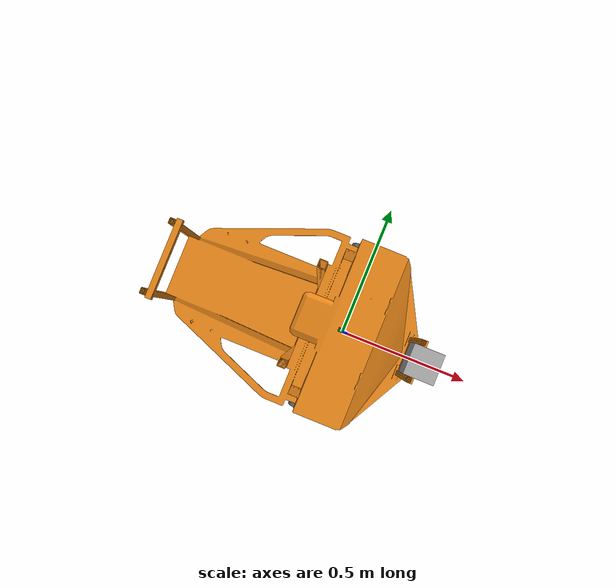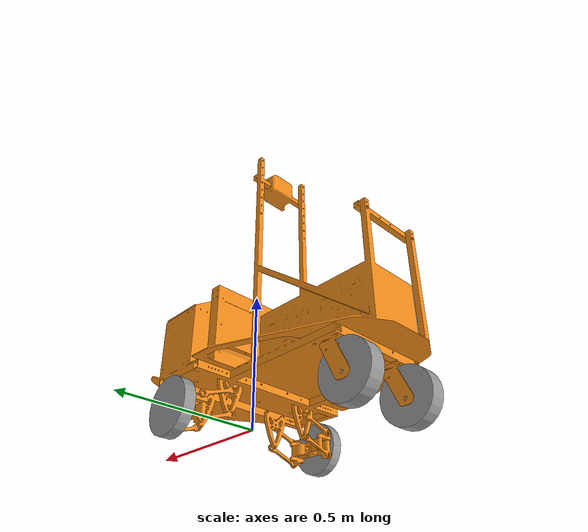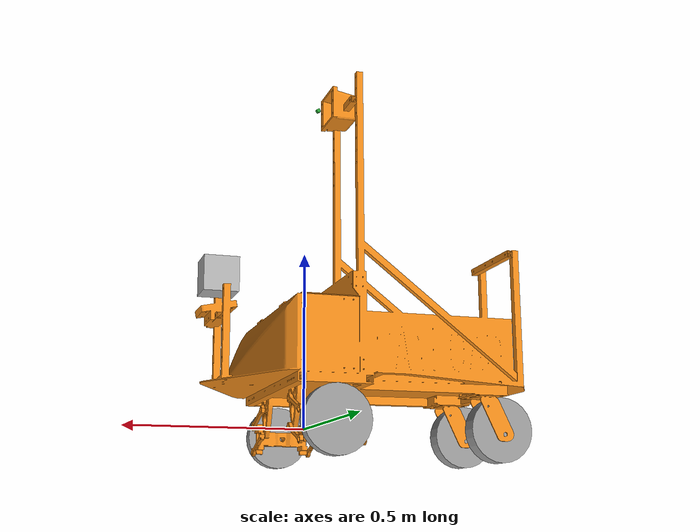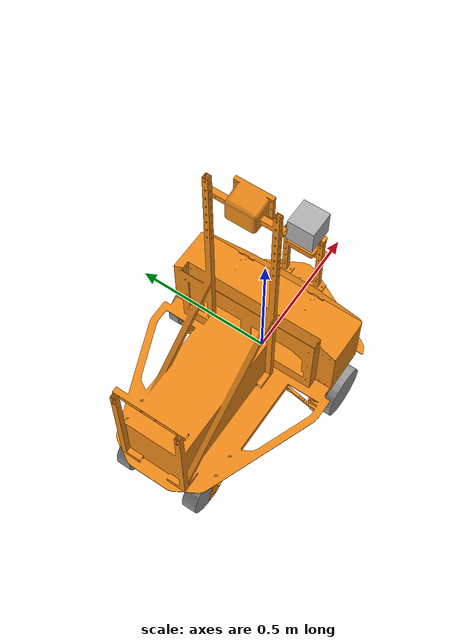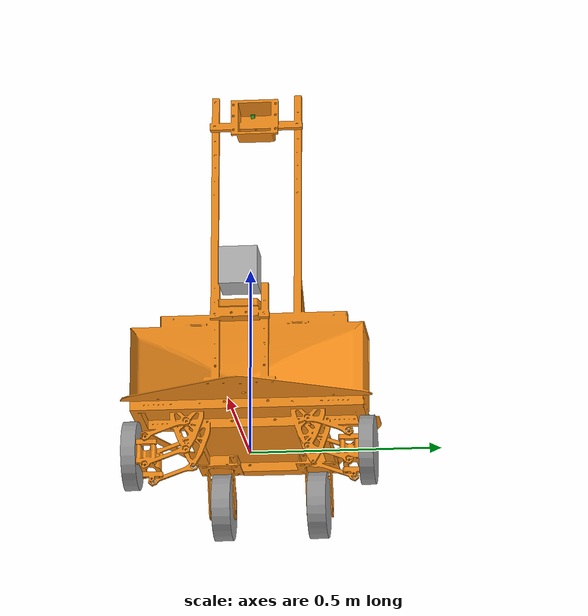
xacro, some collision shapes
<?xml version='1.0'?>

<robot name="myrobot" xmlns:xacro="http://www.ros.org/wiki/xacro">

  <!--wheels -->
  <xacro:property name="drive_wheel_diameter" value="0.1811"/>
  <xacro:property name="drive_wheel_width" value="0.0381"/>
  <xacro:property name="drive_wheel_mass" value="2.5"/>

  <xacro:property name="caster_wheel_diameter" value="0.1811"/>
  <xacro:property name="caster_wheel_width" value="0.0508"/>
  <xacro:property name="caster_wheel_mass" value="3.7"/>

  <!--chassis -->
  <xacro:property name="chassis_length" value="0.50"/>
  <xacro:property name="chassis_width" value="0.25"/>
  <xacro:property name="chassis_height" value="0.01"/>
  <xacro:property name="chassis_mass" value="25"/>
  <xacro:property name="vehicle_clearance" value="0.25"/>

  <!--camera -->
  <xacro:property name="cameraSize" value="0.01"/>
  <xacro:property name="cameraMass" value="0.03"/>
  <xacro:property name="camera_mount_height" value="0.5"/>
  <xacro:property name="camera_mount_width" value="0.05"/>
  <xacro:property name="camera_mount_length" value="0.05"/>
  <xacro:property name="camera_mount_mass" value="0.05"/>

  <xacro:include filename="$(find boilerbot_description_integ)/urdf/mybot.gazebo" />
  <xacro:include filename="$(find boilerbot_description_integ)/urdf/materials.xacro" />
  <xacro:include filename="$(find boilerbot_description_integ)/urdf/macros.xacro" />

  <!-- Chassis Link -->
  <link name='base_link'>
    <pose>0 0 0 0 0 0</pose>

  </link>

  <link name='chassis'>
    <pose>0 0 0 0 0 0</pose>

    <inertial>
      <mass value="${chassis_mass}"/>
      <origin xyz="0.0 0 0" rpy=" 0 0 0"/>
      <inertia
          ixx="${2 / 5 * chassis_mass * 1 ** 2}" ixy="0" ixz="0"
          iyy="${2 / 5 * chassis_mass * 1 ** 2}" iyz="0"
          izz="${2 / 5 * chassis_mass * 1 ** 2}"
      />
    </inertial>

    <collision name='collision'>
      <geometry>
        <mesh filename="package://boilerbot_description_integ/meshes/bodyNoWheels.dae"/>
      </geometry>
    </collision>

    <visual name='chassis_visual'>
      <origin xyz="0 0 0" rpy=" 0 0 -1.5707"/>
      <geometry>
        <mesh filename="package://boilerbot_description_integ/meshes/bodyNoWheels.dae"/>
      </geometry>
    </visual>
  </link>

  <!-- Payload -->

  <!-- Left Castor Wheel Link -->

  <link name="left_castor_wheel">
    <collision name='left_caster_collision'>
      <origin xyz="0 0 0" rpy=" 0 0 0"/>
      <geometry>
        <cylinder radius="${caster_wheel_diameter/2}" length="${caster_wheel_width}"/>
      </geometry>
    </collision>

    <visual name="left_caster_visual">
      <origin xyz="0 0 0" rpy="0 1.5707 1.5707"/>
      <geometry>
        <cylinder radius="${caster_wheel_diameter/2}" length="${caster_wheel_width}"/>
      </geometry>
    </visual>
    <inertial>
      <origin xyz="0 0 0" rpy="0 1.5707 1.5707"/>
      <mass value="${caster_wheel_mass}"/>
      <cylinder_inertia m="${caster_wheel_mass}" r="${caster_wheel_diameter/2}" h="${drive_wheel_width}"/>
      <inertia
        ixx="1.0" ixy="0.0" ixz="0.0"
        iyy="1.0" iyz="0.0"
        izz="1.0"/>
    </inertial>
  </link>

  <!-- Right Castor Wheel Link -->

  <link name="right_castor_wheel">
    <collision name='right_caster_collision'>
      <origin xyz="0 0 0" rpy="0 1.5707 1.5707"/>
      <geometry>
        <cylinder radius="${caster_wheel_diameter/2}" length="${caster_wheel_width}"/>
      </geometry>
    </collision>

    <visual name="right_caster_visual">
      <origin xyz="0 0 0" rpy="0 1.5707 1.5707"/>
      <geometry>
        <cylinder radius="${caster_wheel_diameter/2}" length="${caster_wheel_width}"/>
      </geometry>
    </visual>
    <inertial>
      <origin xyz="0 0 0" rpy="0 1.5707 1.5707"/>
      <mass value="${caster_wheel_mass}"/>
      <cylinder_inertia m="${caster_wheel_mass}" r="${caster_wheel_diameter/2}" h="${caster_wheel_width}"/>
      <inertia
        ixx="1.0" ixy="0.0" ixz="0.0"
        iyy="1.0" iyz="0.0"
        izz="1.0"/>
    </inertial>
  </link>

  <!-- Left Drive Wheel Link -->

  <link name="left_drive_wheel">
    <collision name="collision">
      <origin xyz="0 0 0" rpy="0 1.5707 1.5707"/>
      <geometry>
        <cylinder radius="${drive_wheel_diameter/2}" length="${drive_wheel_width}"/>
      </geometry>
    </collision>
    <visual name="left_wheel_visual">
      <origin xyz="0 0 0" rpy="0 1.5707 1.5707"/>
      <geometry>
        <cylinder radius="${drive_wheel_diameter/2}" length="${drive_wheel_width}"/>
      </geometry>
    </visual>
    <inertial>
      <origin xyz="0 0 0" rpy="0 1.5707 1.5707"/>
      <mass value="${drive_wheel_mass}"/>
      <cylinder_inertia m="${drive_wheel_mass}" r="${drive_wheel_diameter/2}" h="${drive_wheel_width}"/>
      <inertia
        ixx="1.0" ixy="0.0" ixz="0.0"
        iyy="1.0" iyz="0.0"
        izz="1.0"/>
    </inertial>
  </link>

  <!-- Right Drive Wheel Link -->

  <link name="right_drive_wheel">
    <!--origin xyz="0.1 -0.13 0.1" rpy="0 1.5707 1.5707"/-->
    <collision name="collision">
      <origin xyz="0 0 0" rpy="0 1.5707 1.5707"/>
      <geometry>
        <cylinder radius="${drive_wheel_diameter/2}" length="${drive_wheel_width}"/>
      </geometry>
    </collision>
    <visual name="right_wheel_visual">
      <origin xyz="0 0 0" rpy="0 1.5707 1.5707"/>
      <geometry>
        <cylinder radius="${drive_wheel_diameter/2}" length="${drive_wheel_width}"/>
      </geometry>
    </visual>
    <inertial>
      <origin xyz="0 0 0" rpy="0 1.5707 1.5707"/>
      <mass value="${drive_wheel_mass}"/>
      <cylinder_inertia m="${drive_wheel_mass}" r="${drive_wheel_diameter/2}" h="${drive_wheel_width}"/>
      <inertia
        ixx="1.0" ixy="0.0" ixz="0.0"
        iyy="1.0" iyz="0.0"
        izz="1.0"/>
    </inertial>
  </link>

  <!-- Base Link Chassis joint -->
  <joint type="fixed" name="base_link_chassis">
    <origin xyz="0 0 -0.1" rpy="0 0 0"/>
    <child link="chassis"/>
    <parent link="base_link"/>
    <axis xyz="0 1 0"/>
  </joint>

  <!-- Left Drive wheel joint -->

  <joint type="continuous" name="left_drive_hinge">
    <origin xyz="0 0.31 0" rpy="0 0 0"/>
    <child link="left_drive_wheel"/>
    <parent link="base_link"/>
    <axis xyz="0 1 0" rpy="0 0 0"/>
    <limit effort="100" velocity="100"/>
    <joint_properties damping="0.0" friction="0.0"/>
  </joint>

  <!-- Right Drive Wheel Joint -->

  <joint type="continuous" name="right_drive_hinge">
    <origin xyz="0 -0.31 0" rpy="0 0 0"/>
    <child link="right_drive_wheel"/>
    <parent link="base_link"/>
    <axis xyz="0 1 0" rpy="0 0 0"/>
    <limit effort="100" velocity="100"/>
    <joint_properties damping="0.0" friction="0.0"/>
  </joint>

  <!-- Left Castor Wheel Joint -->

  <joint type="continuous" name="left_castor_hinge">
    <origin xyz="-0.53 0.13 0" rpy="0 0 0"/>
    <child link="left_castor_wheel"/>
    <parent link="base_link"/>
    <axis xyz="0 1 0" rpy="0 0 0"/>
    <limit effort="100" velocity="100"/>
    <joint_properties damping="0.0" friction="0.0"/>
  </joint>

  <!-- Right Castor Wheel Joint -->

  <joint type="continuous" name="right_castor_hinge">
    <origin xyz="-0.53 -0.13 0" rpy="0 0 0"/>
    <child link="right_castor_wheel"/>
    <parent link="base_link"/>
    <axis xyz="0 1 0" rpy="0 0 0"/>
    <limit effort="100" velocity="100"/>
    <joint_properties damping="0.0" friction="0.0"/>
  </joint>

  <!-- Camera -->

  <link name="camera">
    <collision>
      <origin xyz="0 0 0" rpy="0 0 0"/>
      <geometry>
        <box size="${cameraSize} ${cameraSize} ${cameraSize}"/>
      </geometry>
    </collision>

    <visual>
      <origin xyz="0 0 0" rpy="0 0 0"/>
      <geometry>
        <box size="${cameraSize} ${cameraSize} ${cameraSize}"/>
      </geometry>
      <material name="green"/>
    </visual>

    <inertial>
      <mass value="${cameraMass}" />
      <origin xyz="0 0 0" rpy="0 0 0"/>
      <box_inertia m="${cameraMass}" x="${cameraSize}" y="${cameraSize}" z="${cameraSize}" />
      <inertia ixx="1e-6" ixy="0" ixz="0" iyy="1e-6" iyz="0" izz="1e-6" />
    </inertial>
  </link>

  <joint name="camera_joint" type="fixed">
    <axis xyz="0 1 0" />
    <origin xyz="-0.04 0 0.95" rpy="0 0.5 0"/>
    <parent link="base_link"/>
    <child link="camera"/>
  </joint>

  <!-- Hokuyo Laser -->
  <link name="hokuyo">
    <collision>
      <origin xyz="0 0 0" rpy="0 0 0"/>
      <geometry>
    <box size="0.1 0.1 0.1"/>
      </geometry>
    </collision>

    <visual>
      <origin xyz="0 0 0" rpy="0 0 0"/>
      <geometry>
        <mesh filename="package://boilerbot_description_integ/meshes/hokuyo.dae"/>
      </geometry>
    </visual>

    <inertial>
      <mass value="1e-5" />
      <origin xyz="0 0 0" rpy="0 0 0"/>
      <inertia ixx="1e-6" ixy="0" ixz="0" iyy="1e-6" iyz="0" izz="1e-6" />
    </inertial>
  </link>

  <joint name="hokuyo_joint" type="fixed">
    <axis xyz="0 1 0" />
    <origin xyz="0.25 0 .420" rpy="0 0 0"/>
    <parent link="base_link"/>
    <child link="hokuyo"/>
  </joint>

</robot>
